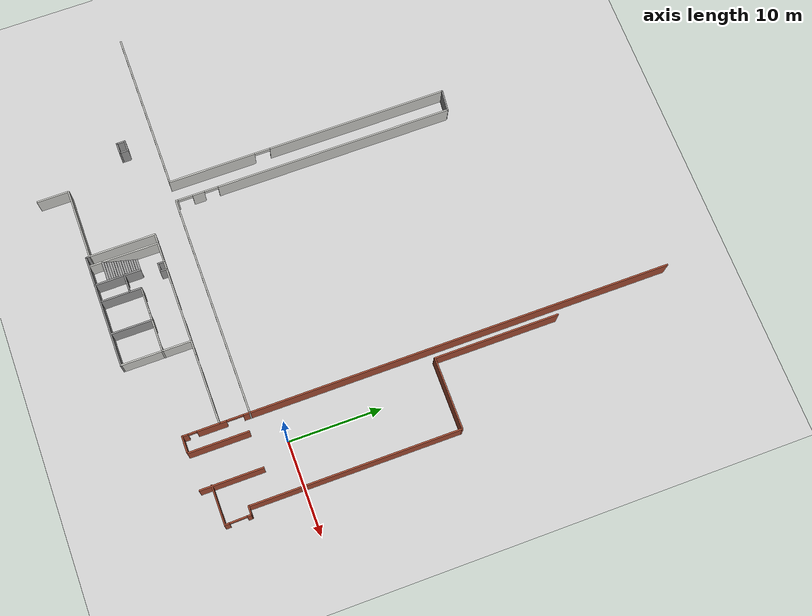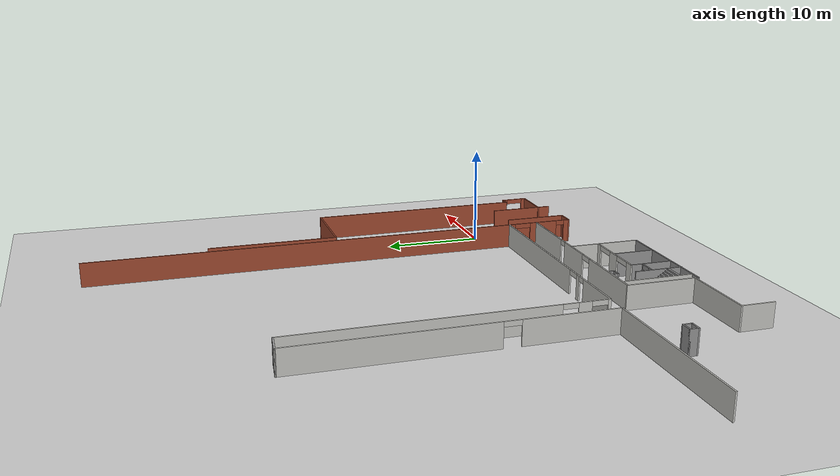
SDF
<sdf version="1.6">
 <world name="default">
  <model name="ground_plane">
   <static>1</static>
   <link name="link">
    <collision name="collision">
     <geometry><plane><normal>0 0 1</normal><size>100 100</size></plane></geometry>
     <surface><friction><ode><mu>100</mu><mu2>50</mu2></ode></friction></surface>
    </collision>
    <visual name="visual">
     <cast_shadows>0</cast_shadows>
     <geometry><plane><normal>0 0 1</normal><size>100 100</size></plane></geometry>
     <material>
      <script><uri>file://media/materials/scripts/gazebo.material</uri><name>Gazebo/Grey</name></script>
     </material>
    </visual>
   </link>
  </model>
  <model name="hospital_LG_detailed">
   <pose>51.8521 -11.413 0 0 -0 0</pose>
   <link name="Wall_0">
    <collision name="Wall_0_Collision">
     <geometry><box><size>6.5 0.15 2.5</size></box></geometry>
     <pose>0 0 1.25 0 -0 0</pose>
    </collision>
    <visual name="Wall_0_Visual">
     <pose>0 0 1.25 0 -0 0</pose>
     <geometry><box><size>6.5 0.15 2.5</size></box></geometry>
     <material>
      <script><uri>file://media/materials/scripts/gazebo.material</uri><name>Gazebo/Bricks</name></script>
      <ambient>1 1 1 1</ambient>
     </material>
     <meta><layer>0</layer></meta>
    </visual>
    <pose>-53.7185 4.89995 0 0 -0 -1.5708</pose>
   </link>
   <link name="Wall_2">
    <collision name="Wall_2_Collision">
     <geometry><box><size>6.75 0.15 2.5</size></box></geometry>
     <pose>0 0 1.25 0 -0 0</pose>
    </collision>
    <visual name="Wall_2_Visual">
     <pose>0 0 1.25 0 -0 0</pose>
     <geometry><box><size>6.75 0.15 2.5</size></box></geometry>
     <material>
      <script><uri>file://media/materials/scripts/gazebo.material</uri><name>Gazebo/Bricks</name></script>
      <ambient>1 1 1 1</ambient>
     </material>
     <meta><layer>0</layer></meta>
    </visual>
    <pose>-49.8098 4.95745 0 0 -0 -1.5708</pose>
   </link>
   <link name="Wall_4">
    <pose>-45.8139 4.28837 0 0 -0 -1.5458</pose>
    <visual name="Wall_4_Visual_0">
     <pose>-1.18145 0 1.25 0 -0 0</pose>
     <geometry><box><size>0.508269 0.15 2.5</size></box></geometry>
     <material>
      <script><uri>file://media/materials/scripts/gazebo.material</uri><name>Gazebo/Bricks</name></script>
      <ambient>1 1 1 1</ambient>
     </material>
     <meta><layer>0</layer></meta>
    </visual>
    <collision name="Wall_4_Collision_0">
     <geometry><box><size>0.508269 0.15 2.5</size></box></geometry>
     <pose>-1.18145 0 1.25 0 -0 0</pose>
    </collision>
    <visual name="Wall_4_Visual_1">
     <pose>1.17092 0 1.25 0 -0 0</pose>
     <geometry><box><size>0.529325 0.15 2.5</size></box></geometry>
     <material>
      <script><uri>file://media/materials/scripts/gazebo.material</uri><name>Gazebo/Bricks</name></script>
      <ambient>1 1 1 1</ambient>
     </material>
     <meta><layer>0</layer></meta>
    </visual>
    <collision name="Wall_4_Collision_1">
     <geometry><box><size>0.529325 0.15 2.5</size></box></geometry>
     <pose>1.17092 0 1.25 0 -0 0</pose>
    </collision>
    <visual name="Wall_4_Visual_2">
     <pose>-0.010528 0 2.25 0 -0 0</pose>
     <geometry><box><size>1.83358 0.15 0.5</size></box></geometry>
     <material>
      <script><uri>file://media/materials/scripts/gazebo.material</uri><name>Gazebo/Bricks</name></script>
      <ambient>1 1 1 1</ambient>
     </material>
     <meta><layer>0</layer></meta>
    </visual>
    <collision name="Wall_4_Collision_2">
     <geometry><box><size>1.83358 0.15 0.5</size></box></geometry>
     <pose>-0.010528 0 2.25 0 -0 0</pose>
    </collision>
   </link>
   <link name="Wall_45">
    <collision name="Wall_45_Collision">
     <geometry><box><size>13.5 0.15 2.5</size></box></geometry>
     <pose>0 0 1.25 0 -0 0</pose>
    </collision>
    <visual name="Wall_45_Visual">
     <pose>0 0 1.25 0 -0 0</pose>
     <geometry><box><size>13.5 0.15 2.5</size></box></geometry>
     <material>
      <script><uri>file://media/materials/scripts/gazebo.material</uri><name>Gazebo/Bricks</name></script>
      <ambient>1 1 1 1</ambient>
     </material>
     <meta><layer>0</layer></meta>
    </visual>
    <pose>-54.4 34.7341 0 0 -0 1.5708</pose>
   </link>
   <link name="Wall_5">
    <collision name="Wall_5_Collision">
     <geometry><box><size>4.25 0.15 2.5</size></box></geometry>
     <pose>0 0 1.25 0 -0 0</pose>
    </collision>
    <visual name="Wall_5_Visual">
     <pose>0 0 1.25 0 -0 0</pose>
     <geometry><box><size>4.25 0.15 2.5</size></box></geometry>
     <material>
      <script><uri>file://media/materials/scripts/gazebo.material</uri><name>Gazebo/Bricks</name></script>
      <ambient>1 1 1 1</ambient>
     </material>
     <meta><layer>0</layer></meta>
    </visual>
    <pose>-47.8374 2.92065 0 0 -0 3.14159</pose>
   </link>
   <link name="Wall_7">
    <collision name="Wall_7_Collision">
     <geometry><box><size>7.82541 0.15 2.5</size></box></geometry>
     <pose>0 0 1.25 0 -0 0</pose>
    </collision>
    <visual name="Wall_7_Visual">
     <pose>0 0 1.25 0 -0 0</pose>
     <geometry><box><size>7.82541 0.15 2.5</size></box></geometry>
     <material>
      <script><uri>file://media/materials/scripts/gazebo.material</uri><name>Gazebo/Bricks</name></script>
      <ambient>1 1 1 1</ambient>
     </material>
     <meta><layer>0</layer></meta>
    </visual>
    <pose>-50.5623 28.0361 0 0 -0 -0.005993</pose>
   </link>
   <link name="Wall_8">
    <collision name="Wall_8_Collision">
     <geometry><box><size>22.5 0.15 2.5</size></box></geometry>
     <pose>0 0 1.25 0 -0 0</pose>
    </collision>
    <visual name="Wall_8_Visual">
     <pose>0 0 1.25 0 -0 0</pose>
     <geometry><box><size>22.5 0.15 2.5</size></box></geometry>
     <material>
      <script><uri>file://media/materials/scripts/gazebo.material</uri><name>Gazebo/Bricks</name></script>
      <ambient>1 1 1 1</ambient>
     </material>
     <meta><layer>0</layer></meta>
    </visual>
    <pose>-46.727 16.8404 0 0 -0 -1.5708</pose>
   </link>
   <link name="Wall_9">
    <collision name="Wall_9_Collision">
     <geometry><box><size>1.02697 0.15 2.5</size></box></geometry>
     <pose>0 0 1.25 0 -0 0</pose>
    </collision>
    <visual name="Wall_9_Visual">
     <pose>0 0 1.25 0 -0 0</pose>
     <geometry><box><size>1.02697 0.15 2.5</size></box></geometry>
     <material>
      <script><uri>file://media/materials/scripts/gazebo.material</uri><name>Gazebo/Bricks</name></script>
      <ambient>1 1 1 1</ambient>
     </material>
     <meta><layer>0</layer></meta>
    </visual>
    <pose>-46.2863 5.65469 0 0 -0 -0.019287</pose>
   </link>
   <static>1</static>
  </model>
  <model name="TKO_LG">
   <pose>-24.5922 13.1807 0 0 -0 0</pose>
   <link name="Stairs_4">
    <visual name="Stairs_4_Visual_0">
     <pose>1.87498 -21.7355 0.083333 0 -0 0</pose>
     <geometry><box><size>2.06304 0.233333 0.166667</size></box></geometry>
     <material>
      <script><uri>file://media/materials/scripts/gazebo.material</uri><name>Gazebo/Grey</name></script>
      <ambient>1 1 1 1</ambient>
     </material>
     <meta><layer>0</layer></meta>
    </visual>
    <collision name="Stairs_4_Collision_0">
     <geometry><box><size>2.06304 0.233333 0.166667</size></box></geometry>
     <pose>1.87498 -21.7355 0.083333 0 -0 0</pose>
    </collision>
    <visual name="Stairs_4_Visual_1">
     <pose>1.87498 -21.9689 0.25 0 -0 0</pose>
     <geometry><box><size>2.06304 0.233333 0.166667</size></box></geometry>
     <material>
      <script><uri>file://media/materials/scripts/gazebo.material</uri><name>Gazebo/Grey</name></script>
      <ambient>1 1 1 1</ambient>
     </material>
     <meta><layer>0</layer></meta>
    </visual>
    <collision name="Stairs_4_Collision_1">
     <geometry><box><size>2.06304 0.233333 0.166667</size></box></geometry>
     <pose>1.87498 -21.9689 0.25 0 -0 0</pose>
    </collision>
    <visual name="Stairs_4_Visual_2">
     <pose>1.87498 -22.2022 0.416667 0 -0 0</pose>
     <geometry><box><size>2.06304 0.233333 0.166667</size></box></geometry>
     <material>
      <script><uri>file://media/materials/scripts/gazebo.material</uri><name>Gazebo/Grey</name></script>
      <ambient>1 1 1 1</ambient>
     </material>
     <meta><layer>0</layer></meta>
    </visual>
    <collision name="Stairs_4_Collision_2">
     <geometry><box><size>2.06304 0.233333 0.166667</size></box></geometry>
     <pose>1.87498 -22.2022 0.416667 0 -0 0</pose>
    </collision>
    <visual name="Stairs_4_Visual_3">
     <pose>1.87498 -22.4355 0.583333 0 -0 0</pose>
     <geometry><box><size>2.06304 0.233333 0.166667</size></box></geometry>
     <material>
      <script><uri>file://media/materials/scripts/gazebo.material</uri><name>Gazebo/Grey</name></script>
      <ambient>1 1 1 1</ambient>
     </material>
     <meta><layer>0</layer></meta>
    </visual>
    <collision name="Stairs_4_Collision_3">
     <geometry><box><size>2.06304 0.233333 0.166667</size></box></geometry>
     <pose>1.87498 -22.4355 0.583333 0 -0 0</pose>
    </collision>
    <visual name="Stairs_4_Visual_4">
     <pose>1.87498 -22.6689 0.75 0 -0 0</pose>
     <geometry><box><size>2.06304 0.233333 0.166667</size></box></geometry>
     <material>
      <script><uri>file://media/materials/scripts/gazebo.material</uri><name>Gazebo/Grey</name></script>
      <ambient>1 1 1 1</ambient>
     </material>
     <meta><layer>0</layer></meta>
    </visual>
    <collision name="Stairs_4_Collision_4">
     <geometry><box><size>2.06304 0.233333 0.166667</size></box></geometry>
     <pose>1.87498 -22.6689 0.75 0 -0 0</pose>
    </collision>
    <visual name="Stairs_4_Visual_5">
     <pose>1.87498 -22.9022 0.916667 0 -0 0</pose>
     <geometry><box><size>2.06304 0.233333 0.166667</size></box></geometry>
     <material>
      <script><uri>file://media/materials/scripts/gazebo.material</uri><name>Gazebo/Grey</name></script>
      <ambient>1 1 1 1</ambient>
     </material>
     <meta><layer>0</layer></meta>
    </visual>
    <collision name="Stairs_4_Collision_5">
     <geometry><box><size>2.06304 0.233333 0.166667</size></box></geometry>
     <pose>1.87498 -22.9022 0.916667 0 -0 0</pose>
    </collision>
    <visual name="Stairs_4_Visual_6">
     <pose>1.87498 -23.1355 1.08333 0 -0 0</pose>
     <geometry><box><size>2.06304 0.233333 0.166667</size></box></geometry>
     <material>
      <script><uri>file://media/materials/scripts/gazebo.material</uri><name>Gazebo/Grey</name></script>
      <ambient>1 1 1 1</ambient>
     </material>
     <meta><layer>0</layer></meta>
    </visual>
    <collision name="Stairs_4_Collision_6">
     <geometry><box><size>2.06304 0.233333 0.166667</size></box></geometry>
     <pose>1.87498 -23.1355 1.08333 0 -0 0</pose>
    </collision>
    <visual name="Stairs_4_Visual_7">
     <pose>1.87498 -23.3689 1.25 0 -0 0</pose>
     <geometry><box><size>2.06304 0.233333 0.166667</size></box></geometry>
     <material>
      <script><uri>file://media/materials/scripts/gazebo.material</uri><name>Gazebo/Grey</name></script>
      <ambient>1 1 1 1</ambient>
     </material>
     <meta><layer>0</layer></meta>
    </visual>
    <collision name="Stairs_4_Collision_7">
     <geometry><box><size>2.06304 0.233333 0.166667</size></box></geometry>
     <pose>1.87498 -23.3689 1.25 0 -0 0</pose>
    </collision>
    <visual name="Stairs_4_Visual_8">
     <pose>1.87498 -23.6022 1.41667 0 -0 0</pose>
     <geometry><box><size>2.06304 0.233333 0.166667</size></box></geometry>
     <material>
      <script><uri>file://media/materials/scripts/gazebo.material</uri><name>Gazebo/Grey</name></script>
      <ambient>1 1 1 1</ambient>
     </material>
     <meta><layer>0</layer></meta>
    </visual>
    <collision name="Stairs_4_Collision_8">
     <geometry><box><size>2.06304 0.233333 0.166667</size></box></geometry>
     <pose>1.87498 -23.6022 1.41667 0 -0 0</pose>
    </collision>
    <visual name="Stairs_4_Visual_9">
     <pose>1.87498 -23.8355 1.58333 0 -0 0</pose>
     <geometry><box><size>2.06304 0.233333 0.166667</size></box></geometry>
     <material>
      <script><uri>file://media/materials/scripts/gazebo.material</uri><name>Gazebo/Grey</name></script>
      <ambient>1 1 1 1</ambient>
     </material>
     <meta><layer>0</layer></meta>
    </visual>
    <collision name="Stairs_4_Collision_9">
     <geometry><box><size>2.06304 0.233333 0.166667</size></box></geometry>
     <pose>1.87498 -23.8355 1.58333 0 -0 0</pose>
    </collision>
    <visual name="Stairs_4_Visual_10">
     <pose>1.87498 -24.0689 1.75 0 -0 0</pose>
     <geometry><box><size>2.06304 0.233333 0.166667</size></box></geometry>
     <material>
      <script><uri>file://media/materials/scripts/gazebo.material</uri><name>Gazebo/Grey</name></script>
      <ambient>1 1 1 1</ambient>
     </material>
     <meta><layer>0</layer></meta>
    </visual>
    <collision name="Stairs_4_Collision_10">
     <geometry><box><size>2.06304 0.233333 0.166667</size></box></geometry>
     <pose>1.87498 -24.0689 1.75 0 -0 0</pose>
    </collision>
    <visual name="Stairs_4_Visual_11">
     <pose>1.87498 -24.3022 1.91667 0 -0 0</pose>
     <geometry><box><size>2.06304 0.233333 0.166667</size></box></geometry>
     <material>
      <script><uri>file://media/materials/scripts/gazebo.material</uri><name>Gazebo/Grey</name></script>
      <ambient>1 1 1 1</ambient>
     </material>
     <meta><layer>0</layer></meta>
    </visual>
    <collision name="Stairs_4_Collision_11">
     <geometry><box><size>2.06304 0.233333 0.166667</size></box></geometry>
     <pose>1.87498 -24.3022 1.91667 0 -0 0</pose>
    </collision>
    <visual name="Stairs_4_Visual_12">
     <pose>1.87498 -24.5355 2.08333 0 -0 0</pose>
     <geometry><box><size>2.06304 0.233333 0.166667</size></box></geometry>
     <material>
      <script><uri>file://media/materials/scripts/gazebo.material</uri><name>Gazebo/Grey</name></script>
      <ambient>1 1 1 1</ambient>
     </material>
     <meta><layer>0</layer></meta>
    </visual>
    <collision name="Stairs_4_Collision_12">
     <geometry><box><size>2.06304 0.233333 0.166667</size></box></geometry>
     <pose>1.87498 -24.5355 2.08333 0 -0 0</pose>
    </collision>
    <visual name="Stairs_4_Visual_13">
     <pose>1.87498 -24.7689 2.25 0 -0 0</pose>
     <geometry><box><size>2.06304 0.233333 0.166667</size></box></geometry>
     <material>
      <script><uri>file://media/materials/scripts/gazebo.material</uri><name>Gazebo/Grey</name></script>
      <ambient>1 1 1 1</ambient>
     </material>
     <meta><layer>0</layer></meta>
    </visual>
    <collision name="Stairs_4_Collision_13">
     <geometry><box><size>2.06304 0.233333 0.166667</size></box></geometry>
     <pose>1.87498 -24.7689 2.25 0 -0 0</pose>
    </collision>
    <visual name="Stairs_4_Visual_14">
     <pose>1.87498 -25.0022 2.41667 0 -0 0</pose>
     <geometry><box><size>2.06304 0.233333 0.166667</size></box></geometry>
     <material>
      <script><uri>file://media/materials/scripts/gazebo.material</uri><name>Gazebo/Grey</name></script>
      <ambient>1 1 1 1</ambient>
     </material>
     <meta><layer>0</layer></meta>
    </visual>
    <collision name="Stairs_4_Collision_14">
     <geometry><box><size>2.06304 0.233333 0.166667</size></box></geometry>
     <pose>1.87498 -25.0022 2.41667 0 -0 0</pose>
    </collision>
   </link>
   <link name="Wall_100">
    <pose>9.04363 -15.8487 0 0 -0 3.14159</pose>
    <visual name="Wall_100_Visual_0">
     <pose>-4.1621 0 1.25 0 -0 0</pose>
     <geometry><box><size>15.6758 0.15 2.5</size></box></geometry>
     <material>
      <script><uri>file://media/materials/scripts/gazebo.material</uri><name>Gazebo/CeilingTiled</name></script>
      <ambient>1 1 1 1</ambient>
     </material>
     <meta><layer>0</layer></meta>
    </visual>
    <collision name="Wall_100_Collision_0">
     <geometry><box><size>15.6758 0.15 2.5</size></box></geometry>
     <pose>-4.1621 0 1.25 0 -0 0</pose>
    </collision>
    <visual name="Wall_100_Visual_1">
     <pose>5.43706 0 1.25 0 -0 0</pose>
     <geometry><box><size>0.548138 0.15 2.5</size></box></geometry>
     <material>
      <script><uri>file://media/materials/scripts/gazebo.material</uri><name>Gazebo/CeilingTiled</name></script>
      <ambient>1 1 1 1</ambient>
     </material>
     <meta><layer>0</layer></meta>
    </visual>
    <collision name="Wall_100_Collision_1">
     <geometry><box><size>0.548138 0.15 2.5</size></box></geometry>
     <pose>5.43706 0 1.25 0 -0 0</pose>
    </collision>
    <visual name="Wall_100_Visual_2">
     <pose>9.30556 0 1.25 0 -0 0</pose>
     <geometry><box><size>5.38887 0.15 2.5</size></box></geometry>
     <material>
      <script><uri>file://media/materials/scripts/gazebo.material</uri><name>Gazebo/CeilingTiled</name></script>
      <ambient>1 1 1 1</ambient>
     </material>
     <meta><layer>0</layer></meta>
    </visual>
    <collision name="Wall_100_Collision_2">
     <geometry><box><size>5.38887 0.15 2.5</size></box></geometry>
     <pose>9.30556 0 1.25 0 -0 0</pose>
    </collision>
    <visual name="Wall_100_Visual_3">
     <pose>4.4194 0 2.25 0 -0 0</pose>
     <geometry><box><size>1.48719 0.15 0.5</size></box></geometry>
     <material>
      <script><uri>file://media/materials/scripts/gazebo.material</uri><name>Gazebo/CeilingTiled</name></script>
      <ambient>1 1 1 1</ambient>
     </material>
     <meta><layer>0</layer></meta>
    </visual>
    <collision name="Wall_100_Collision_3">
     <geometry><box><size>1.48719 0.15 0.5</size></box></geometry>
     <pose>4.4194 0 2.25 0 -0 0</pose>
    </collision>
    <visual name="Wall_100_Visual_4">
     <pose>6.16113 0 2.25 0 -0 0</pose>
     <geometry><box><size>0.9 0.15 0.5</size></box></geometry>
     <material>
      <script><uri>file://media/materials/scripts/gazebo.material</uri><name>Gazebo/CeilingTiled</name></script>
      <ambient>1 1 1 1</ambient>
     </material>
     <meta><layer>0</layer></meta>
    </visual>
    <collision name="Wall_100_Collision_4">
     <geometry><box><size>0.9 0.15 0.5</size></box></geometry>
     <pose>6.16113 0 2.25 0 -0 0</pose>
    </collision>
   </link>
   <link name="Wall_102">
    <pose>10.3628 -19.0309 0 0 -0 3.14159</pose>
    <visual name="Wall_102_Visual_0">
     <pose>-7.31057 0 1.25 0 -0 0</pose>
     <geometry><box><size>6.62887 0.15 2.5</size></box></geometry>
     <material>
      <script><uri>file://media/materials/scripts/gazebo.material</uri><name>Gazebo/CeilingTiled</name></script>
      <ambient>1 1 1 1</ambient>
     </material>
     <meta><layer>0</layer></meta>
    </visual>
    <collision name="Wall_102_Collision_0">
     <geometry><box><size>6.62887 0.15 2.5</size></box></geometry>
     <pose>-7.31057 0 1.25 0 -0 0</pose>
    </collision>
    <visual name="Wall_102_Visual_1">
     <pose>-0.993344 0 1.25 0 -0 0</pose>
     <geometry><box><size>4.20558 0.15 2.5</size></box></geometry>
     <material>
      <script><uri>file://media/materials/scripts/gazebo.material</uri><name>Gazebo/CeilingTiled</name></script>
      <ambient>1 1 1 1</ambient>
     </material>
     <meta><layer>0</layer></meta>
    </visual>
    <collision name="Wall_102_Collision_1">
     <geometry><box><size>4.20558 0.15 2.5</size></box></geometry>
     <pose>-0.993344 0 1.25 0 -0 0</pose>
    </collision>
    <visual name="Wall_102_Visual_2">
     <pose>6.62748 0 1.25 0 -0 0</pose>
     <geometry><box><size>7.99504 0.15 2.5</size></box></geometry>
     <material>
      <script><uri>file://media/materials/scripts/gazebo.material</uri><name>Gazebo/CeilingTiled</name></script>
      <ambient>1 1 1 1</ambient>
     </material>
     <meta><layer>0</layer></meta>
    </visual>
    <collision name="Wall_102_Collision_2">
     <geometry><box><size>7.99504 0.15 2.5</size></box></geometry>
     <pose>6.62748 0 1.25 0 -0 0</pose>
    </collision>
    <visual name="Wall_102_Visual_3">
     <pose>-3.54613 0 2.25 0 -0 0</pose>
     <geometry><box><size>0.9 0.15 0.5</size></box></geometry>
     <material>
      <script><uri>file://media/materials/scripts/gazebo.material</uri><name>Gazebo/CeilingTiled</name></script>
      <ambient>1 1 1 1</ambient>
     </material>
     <meta><layer>0</layer></meta>
    </visual>
    <collision name="Wall_102_Collision_3">
     <geometry><box><size>0.9 0.15 0.5</size></box></geometry>
     <pose>-3.54613 0 2.25 0 -0 0</pose>
    </collision>
    <visual name="Wall_102_Visual_4">
     <pose>1.8697 0 2.25 0 -0 0</pose>
     <geometry><box><size>1.52052 0.15 0.5</size></box></geometry>
     <material>
      <script><uri>file://media/materials/scripts/gazebo.material</uri><name>Gazebo/CeilingTiled</name></script>
      <ambient>1 1 1 1</ambient>
     </material>
     <meta><layer>0</layer></meta>
    </visual>
    <collision name="Wall_102_Collision_4">
     <geometry><box><size>1.52052 0.15 0.5</size></box></geometry>
     <pose>1.8697 0 2.25 0 -0 0</pose>
    </collision>
   </link>
   <link name="Wall_103">
    <collision name="Wall_103_Collision">
     <geometry><box><size>7.22209 0.15 2.5</size></box></geometry>
     <pose>0 0 1.25 0 -0 0</pose>
    </collision>
    <visual name="Wall_103_Visual">
     <pose>0 0 1.25 0 -0 0</pose>
     <geometry><box><size>7.22209 0.15 2.5</size></box></geometry>
     <material>
      <script><uri>file://media/materials/scripts/gazebo.material</uri><name>Gazebo/CeilingTiled</name></script>
      <ambient>1 1 1 1</ambient>
     </material>
     <meta><layer>0</layer></meta>
    </visual>
    <pose>-0.201158 -22.553 0 0 -0 -1.5708</pose>
   </link>
   <link name="Wall_104">
    <collision name="Wall_104_Collision">
     <geometry><box><size>7.75 0.15 2.5</size></box></geometry>
     <pose>0 0 1.25 0 -0 0</pose>
    </collision>
    <visual name="Wall_104_Visual">
     <pose>0 0 1.25 0 -0 0</pose>
     <geometry><box><size>7.75 0.15 2.5</size></box></geometry>
     <material>
      <script><uri>file://media/materials/scripts/gazebo.material</uri><name>Gazebo/CeilingTiled</name></script>
      <ambient>1 1 1 1</ambient>
     </material>
     <meta><layer>0</layer></meta>
    </visual>
    <pose>-4.00116 -26.089 0 0 -0 3.14159</pose>
   </link>
   <link name="Wall_105">
    <collision name="Wall_105_Collision">
     <geometry><box><size>3.5 0.15 2.5</size></box></geometry>
     <pose>0 0 1.25 0 -0 0</pose>
    </collision>
    <visual name="Wall_105_Visual">
     <pose>0 0 1.25 0 -0 0</pose>
     <geometry><box><size>3.5 0.15 2.5</size></box></geometry>
     <material>
      <script><uri>file://media/materials/scripts/gazebo.material</uri><name>Gazebo/CeilingTiled</name></script>
      <ambient>1 1 1 1</ambient>
     </material>
     <meta><layer>0</layer></meta>
    </visual>
    <pose>-7.80116 -27.764 0 0 -0 -1.5708</pose>
   </link>
   <link name="Wall_107">
    <collision name="Wall_107_Collision">
     <geometry><box><size>17.5 0.15 2.5</size></box></geometry>
     <pose>0 0 1.25 0 -0 0</pose>
    </collision>
    <visual name="Wall_107_Visual">
     <pose>0 0 1.25 0 -0 0</pose>
     <geometry><box><size>17.5 0.15 2.5</size></box></geometry>
     <material>
      <script><uri>file://media/materials/scripts/gazebo.material</uri><name>Gazebo/CeilingTiled</name></script>
      <ambient>1 1 1 1</ambient>
     </material>
     <meta><layer>0</layer></meta>
    </visual>
    <pose>-13.8888 -15.8207 0 0 -0 0</pose>
   </link>
   <link name="Wall_109">
    <pose>-5.2138 -0.520748 0 0 -0 1.5708</pose>
    <visual name="Wall_109_Visual_0">
     <pose>-10.6375 0 1.25 0 -0 0</pose>
     <geometry><box><size>9.47493 0.15 2.5</size></box></geometry>
     <material>
      <script><uri>file://media/materials/scripts/gazebo.material</uri><name>Gazebo/CeilingTiled</name></script>
      <ambient>1 1 1 1</ambient>
     </material>
     <meta><layer>0</layer></meta>
    </visual>
    <collision name="Wall_109_Collision_0">
     <geometry><box><size>9.47493 0.15 2.5</size></box></geometry>
     <pose>-10.6375 0 1.25 0 -0 0</pose>
    </collision>
    <visual name="Wall_109_Visual_1">
     <pose>5.58217 0 1.25 0 -0 0</pose>
     <geometry><box><size>19.5857 0.15 2.5</size></box></geometry>
     <material>
      <script><uri>file://media/materials/scripts/gazebo.material</uri><name>Gazebo/CeilingTiled</name></script>
      <ambient>1 1 1 1</ambient>
     </material>
     <meta><layer>0</layer></meta>
    </visual>
    <collision name="Wall_109_Collision_1">
     <geometry><box><size>19.5857 0.15 2.5</size></box></geometry>
     <pose>5.58217 0 1.25 0 -0 0</pose>
    </collision>
    <visual name="Wall_109_Visual_2">
     <pose>-5.05537 0 2.25 0 -0 0</pose>
     <geometry><box><size>1.68941 0.15 0.5</size></box></geometry>
     <material>
      <script><uri>file://media/materials/scripts/gazebo.material</uri><name>Gazebo/CeilingTiled</name></script>
      <ambient>1 1 1 1</ambient>
     </material>
     <meta><layer>0</layer></meta>
    </visual>
    <collision name="Wall_109_Collision_2">
     <geometry><box><size>1.68941 0.15 0.5</size></box></geometry>
     <pose>-5.05537 0 2.25 0 -0 0</pose>
    </collision>
   </link>
   <link name="Wall_110">
    <collision name="Wall_110_Collision">
     <geometry><box><size>2.398 0.15 2.5</size></box></geometry>
     <pose>0 0 1.25 0 -0 0</pose>
    </collision>
    <visual name="Wall_110_Visual">
     <pose>0 0 1.25 0 -0 0</pose>
     <geometry><box><size>2.398 0.15 2.5</size></box></geometry>
     <material>
      <script><uri>file://media/materials/scripts/gazebo.material</uri><name>Gazebo/Grey</name></script>
      <ambient>1 1 1 1</ambient>
     </material>
     <meta><layer>0</layer></meta>
    </visual>
    <pose>-4.09705 14.6518 0 0 -0 -0.113621</pose>
   </link>
   <link name="Wall_111">
    <pose>-2.97625 -0.650618 0 0 -0 -1.5708</pose>
    <visual name="Wall_111_Visual_0">
     <pose>-2.34069 0 1.25 0 -0 0</pose>
     <geometry><box><size>25.8186 0.15 2.5</size></box></geometry>
     <material>
      <script><uri>file://media/materials/scripts/gazebo.material</uri><name>Gazebo/CeilingTiled</name></script>
      <ambient>1 1 1 1</ambient>
     </material>
     <meta><layer>0</layer></meta>
    </visual>
    <collision name="Wall_111_Collision_0">
     <geometry><box><size>25.8186 0.15 2.5</size></box></geometry>
     <pose>-2.34069 0 1.25 0 -0 0</pose>
    </collision>
    <visual name="Wall_111_Visual_1">
     <pose>12.7395 0 1.25 0 -0 0</pose>
     <geometry><box><size>1.2931 0.15 2.5</size></box></geometry>
     <material>
      <script><uri>file://media/materials/scripts/gazebo.material</uri><name>Gazebo/CeilingTiled</name></script>
      <ambient>1 1 1 1</ambient>
     </material>
     <meta><layer>0</layer></meta>
    </visual>
    <collision name="Wall_111_Collision_1">
     <geometry><box><size>1.2931 0.15 2.5</size></box></geometry>
     <pose>12.7395 0 1.25 0 -0 0</pose>
    </collision>
    <visual name="Wall_111_Visual_2">
     <pose>15.1013 0 1.25 0 -0 0</pose>
     <geometry><box><size>0.297387 0.15 2.5</size></box></geometry>
     <material>
      <script><uri>file://media/materials/scripts/gazebo.material</uri><name>Gazebo/CeilingTiled</name></script>
      <ambient>1 1 1 1</ambient>
     </material>
     <meta><layer>0</layer></meta>
    </visual>
    <collision name="Wall_111_Collision_2">
     <geometry><box><size>0.297387 0.15 2.5</size></box></geometry>
     <pose>15.1013 0 1.25 0 -0 0</pose>
    </collision>
    <visual name="Wall_111_Visual_3">
     <pose>11.3308 0 2.25 0 -0 0</pose>
     <geometry><box><size>1.52435 0.15 0.5</size></box></geometry>
     <material>
      <script><uri>file://media/materials/scripts/gazebo.material</uri><name>Gazebo/CeilingTiled</name></script>
      <ambient>1 1 1 1</ambient>
     </material>
     <meta><layer>0</layer></meta>
    </visual>
    <collision name="Wall_111_Collision_3">
     <geometry><box><size>1.52435 0.15 0.5</size></box></geometry>
     <pose>11.3308 0 2.25 0 -0 0</pose>
    </collision>
    <visual name="Wall_111_Visual_4">
     <pose>14.1693 0 2.25 0 -0 0</pose>
     <geometry><box><size>1.56654 0.15 0.5</size></box></geometry>
     <material>
      <script><uri>file://media/materials/scripts/gazebo.material</uri><name>Gazebo/CeilingTiled</name></script>
      <ambient>1 1 1 1</ambient>
     </material>
     <meta><layer>0</layer></meta>
    </visual>
    <collision name="Wall_111_Collision_4">
     <geometry><box><size>1.56654 0.15 0.5</size></box></geometry>
     <pose>14.1693 0 2.25 0 -0 0</pose>
    </collision>
   </link>
   <link name="Wall_113">
    <collision name="Wall_113_Collision">
     <geometry><box><size>0.75 0.15 2.5</size></box></geometry>
     <pose>0 0 1.25 0 -0 0</pose>
    </collision>
    <visual name="Wall_113_Visual">
     <pose>0 0 1.25 0 -0 0</pose>
     <geometry><box><size>0.75 0.15 2.5</size></box></geometry>
     <material>
      <script><uri>file://media/materials/scripts/gazebo.material</uri><name>Gazebo/Grey</name></script>
      <ambient>1 1 1 1</ambient>
     </material>
     <meta><layer>0</layer></meta>
    </visual>
    <pose>3.81641 -19.38 0 0 -0 -1.5708</pose>
   </link>
   <link name="Wall_114">
    <collision name="Wall_114_Collision">
     <geometry><box><size>1 0.15 2.5</size></box></geometry>
     <pose>0 0 1.25 0 -0 0</pose>
    </collision>
    <visual name="Wall_114_Visual">
     <pose>0 0 1.25 0 -0 0</pose>
     <geometry><box><size>1 0.15 2.5</size></box></geometry>
     <material>
      <script><uri>file://media/materials/scripts/gazebo.material</uri><name>Gazebo/Grey</name></script>
      <ambient>1 1 1 1</ambient>
     </material>
     <meta><layer>0</layer></meta>
    </visual>
    <pose>3.3914 -19.68 0 0 -0 3.14159</pose>
   </link>
   <link name="Wall_115">
    <collision name="Wall_115_Collision">
     <geometry><box><size>0.75 0.15 2.5</size></box></geometry>
     <pose>0 0 1.25 0 -0 0</pose>
    </collision>
    <visual name="Wall_115_Visual">
     <pose>0 0 1.25 0 -0 0</pose>
     <geometry><box><size>0.75 0.15 2.5</size></box></geometry>
     <material>
      <script><uri>file://media/materials/scripts/gazebo.material</uri><name>Gazebo/Grey</name></script>
      <ambient>1 1 1 1</ambient>
     </material>
     <meta><layer>0</layer></meta>
    </visual>
    <pose>2.9664 -19.38 0 0 -0 1.5708</pose>
   </link>
   <link name="Wall_117">
    <collision name="Wall_117_Collision">
     <geometry><box><size>7.5 0.15 2.5</size></box></geometry>
     <pose>0 0 1.25 0 -0 0</pose>
    </collision>
    <visual name="Wall_117_Visual">
     <pose>0 0 1.25 0 -0 0</pose>
     <geometry><box><size>7.5 0.15 2.5</size></box></geometry>
     <material>
      <script><uri>file://media/materials/scripts/gazebo.material</uri><name>Gazebo/CeilingTiled</name></script>
      <ambient>1 1 1 1</ambient>
     </material>
     <meta><layer>0</layer></meta>
    </visual>
    <pose>11.9561 -22.7733 0 0 -0 -1.5708</pose>
   </link>
   <link name="Wall_118">
    <collision name="Wall_118_Collision">
     <geometry><box><size>12.25 0.15 2.5</size></box></geometry>
     <pose>0 0 1.25 0 -0 0</pose>
    </collision>
    <visual name="Wall_118_Visual">
     <pose>0 0 1.25 0 -0 0</pose>
     <geometry><box><size>12.25 0.15 2.5</size></box></geometry>
     <material>
      <script><uri>file://media/materials/scripts/gazebo.material</uri><name>Gazebo/Grey</name></script>
      <ambient>1 1 1 1</ambient>
     </material>
     <meta><layer>0</layer></meta>
    </visual>
    <pose>5.90613 -26.4483 0 0 -0 3.14159</pose>
   </link>
   <link name="Wall_119">
    <collision name="Wall_119_Collision">
     <geometry><box><size>0.513763 0.15 2.5</size></box></geometry>
     <pose>0 0 1.25 0 -0 0</pose>
    </collision>
    <visual name="Wall_119_Visual">
     <pose>0 0 1.25 0 -0 0</pose>
     <geometry><box><size>0.513763 0.15 2.5</size></box></geometry>
     <material>
      <script><uri>file://media/materials/scripts/gazebo.material</uri><name>Gazebo/Grey</name></script>
      <ambient>1 1 1 1</ambient>
     </material>
     <meta><layer>0</layer></meta>
    </visual>
    <pose>-0.172515 -26.2686 0 0 -0 1.72894</pose>
   </link>
   <link name="Wall_121">
    <collision name="Wall_121_Collision">
     <geometry><box><size>7.5 0.15 2.5</size></box></geometry>
     <pose>0 0 1.25 0 -0 0</pose>
    </collision>
    <visual name="Wall_121_Visual">
     <pose>0 0 1.25 0 -0 0</pose>
     <geometry><box><size>7.5 0.15 2.5</size></box></geometry>
     <material>
      <script><uri>file://media/materials/scripts/gazebo.material</uri><name>Gazebo/CeilingTiled</name></script>
      <ambient>1 1 1 1</ambient>
     </material>
     <meta><layer>0</layer></meta>
    </visual>
    <pose>0.841574 -22.7185 0 0 -0 -1.5708</pose>
   </link>
   <link name="Wall_123">
    <collision name="Wall_123_Collision">
     <geometry><box><size>5 0.15 2.5</size></box></geometry>
     <pose>0 0 1.25 0 -0 0</pose>
    </collision>
    <visual name="Wall_123_Visual">
     <pose>0 0 1.25 0 -0 0</pose>
     <geometry><box><size>5 0.15 2.5</size></box></geometry>
     <material>
      <script><uri>file://media/materials/scripts/gazebo.material</uri><name>Gazebo/Grey</name></script>
      <ambient>1 1 1 1</ambient>
     </material>
     <meta><layer>0</layer></meta>
    </visual>
    <pose>2.97688 -24.0509 0 0 -0 -1.5708</pose>
   </link>
   <link name="Wall_126">
    <pose>8.42438 -22.0913 0 0 -0 3.14159</pose>
    <visual name="Wall_126_Visual_0">
     <pose>-3.24445 0 1.25 0 -0 0</pose>
     <geometry><box><size>0.761094 0.15 2.5</size></box></geometry>
     <material>
      <script><uri>file://media/materials/scripts/gazebo.material</uri><name>Gazebo/CeilingTiled</name></script>
      <ambient>1 1 1 1</ambient>
     </material>
     <meta><layer>0</layer></meta>
    </visual>
    <collision name="Wall_126_Collision_0">
     <geometry><box><size>0.761094 0.15 2.5</size></box></geometry>
     <pose>-3.24445 0 1.25 0 -0 0</pose>
    </collision>
    <visual name="Wall_126_Visual_1">
     <pose>-0.075561 0 1.25 0 -0 0</pose>
     <geometry><box><size>1.49538 0.15 2.5</size></box></geometry>
     <material>
      <script><uri>file://media/materials/scripts/gazebo.material</uri><name>Gazebo/CeilingTiled</name></script>
      <ambient>1 1 1 1</ambient>
     </material>
     <meta><layer>0</layer></meta>
    </visual>
    <collision name="Wall_126_Collision_1">
     <geometry><box><size>1.49538 0.15 2.5</size></box></geometry>
     <pose>-0.075561 0 1.25 0 -0 0</pose>
    </collision>
    <visual name="Wall_126_Visual_2">
     <pose>3.17346 0 1.25 0 -0 0</pose>
     <geometry><box><size>0.903091 0.15 2.5</size></box></geometry>
     <material>
      <script><uri>file://media/materials/scripts/gazebo.material</uri><name>Gazebo/CeilingTiled</name></script>
      <ambient>1 1 1 1</ambient>
     </material>
     <meta><layer>0</layer></meta>
    </visual>
    <collision name="Wall_126_Collision_2">
     <geometry><box><size>0.903091 0.15 2.5</size></box></geometry>
     <pose>3.17346 0 1.25 0 -0 0</pose>
    </collision>
    <visual name="Wall_126_Visual_3">
     <pose>-1.84358 0 2.25 0 -0 0</pose>
     <geometry><box><size>2.04066 0.15 0.5</size></box></geometry>
     <material>
      <script><uri>file://media/materials/scripts/gazebo.material</uri><name>Gazebo/CeilingTiled</name></script>
      <ambient>1 1 1 1</ambient>
     </material>
     <meta><layer>0</layer></meta>
    </visual>
    <collision name="Wall_126_Collision_3">
     <geometry><box><size>2.04066 0.15 0.5</size></box></geometry>
     <pose>-1.84358 0 2.25 0 -0 0</pose>
    </collision>
    <visual name="Wall_126_Visual_4">
     <pose>1.69702 0 2.25 0 -0 0</pose>
     <geometry><box><size>2.04978 0.15 0.5</size></box></geometry>
     <material>
      <script><uri>file://media/materials/scripts/gazebo.material</uri><name>Gazebo/CeilingTiled</name></script>
      <ambient>1 1 1 1</ambient>
     </material>
     <meta><layer>0</layer></meta>
    </visual>
    <collision name="Wall_126_Collision_4">
     <geometry><box><size>2.04978 0.15 0.5</size></box></geometry>
     <pose>1.69702 0 2.25 0 -0 0</pose>
    </collision>
   </link>
   <link name="Wall_128">
    <collision name="Wall_128_Collision">
     <geometry><box><size>4.5 0.15 2.5</size></box></geometry>
     <pose>0 0 1.25 0 -0 0</pose>
    </collision>
    <visual name="Wall_128_Visual">
     <pose>0 0 1.25 0 -0 0</pose>
     <geometry><box><size>4.5 0.15 2.5</size></box></geometry>
     <material>
      <script><uri>file://media/materials/scripts/gazebo.material</uri><name>Gazebo/Grey</name></script>
      <ambient>1 1 1 1</ambient>
     </material>
     <meta><layer>0</layer></meta>
    </visual>
    <pose>4.87438 -24.2663 0 0 -0 -1.5708</pose>
   </link>
   <link name="Wall_130">
    <pose>3.94081 -23.3141 0 0 -0 3.14159</pose>
    <visual name="Wall_130_Visual_0">
     <pose>-0.847584 0 1.25 0 -0 0</pose>
     <geometry><box><size>0.304831 0.15 2.5</size></box></geometry>
     <material>
      <script><uri>file://media/materials/scripts/gazebo.material</uri><name>Gazebo/Grey</name></script>
      <ambient>1 1 1 1</ambient>
     </material>
     <meta><layer>0</layer></meta>
    </visual>
    <collision name="Wall_130_Collision_0">
     <geometry><box><size>0.304831 0.15 2.5</size></box></geometry>
     <pose>-0.847584 0 1.25 0 -0 0</pose>
    </collision>
    <visual name="Wall_130_Visual_1">
     <pose>0.675418 0 1.25 0 -0 0</pose>
     <geometry><box><size>0.649165 0.15 2.5</size></box></geometry>
     <material>
      <script><uri>file://media/materials/scripts/gazebo.material</uri><name>Gazebo/Grey</name></script>
      <ambient>1 1 1 1</ambient>
     </material>
     <meta><layer>0</layer></meta>
    </visual>
    <collision name="Wall_130_Collision_1">
     <geometry><box><size>0.649165 0.15 2.5</size></box></geometry>
     <pose>0.675418 0 1.25 0 -0 0</pose>
    </collision>
    <visual name="Wall_130_Visual_2">
     <pose>-0.172167 0 2.25 0 -0 0</pose>
     <geometry><box><size>1.046 0.15 0.5</size></box></geometry>
     <material>
      <script><uri>file://media/materials/scripts/gazebo.material</uri><name>Gazebo/Grey</name></script>
      <ambient>1 1 1 1</ambient>
     </material>
     <meta><layer>0</layer></meta>
    </visual>
    <collision name="Wall_130_Collision_2">
     <geometry><box><size>1.046 0.15 0.5</size></box></geometry>
     <pose>-0.172167 0 2.25 0 -0 0</pose>
    </collision>
   </link>
   <link name="Wall_132">
    <collision name="Wall_132_Collision">
     <geometry><box><size>4.5 0.15 2.5</size></box></geometry>
     <pose>0 0 1.25 0 -0 0</pose>
    </collision>
    <visual name="Wall_132_Visual">
     <pose>0 0 1.25 0 -0 0</pose>
     <geometry><box><size>4.5 0.15 2.5</size></box></geometry>
     <material>
      <script><uri>file://media/materials/scripts/gazebo.material</uri><name>Gazebo/Grey</name></script>
      <ambient>1 1 1 1</ambient>
     </material>
     <meta><layer>0</layer></meta>
    </visual>
    <pose>8.49766 -24.2846 0 0 -0 -1.5708</pose>
   </link>
   <link name="Wall_134">
    <collision name="Wall_134_Collision">
     <geometry><box><size>1.25 0.15 2.5</size></box></geometry>
     <pose>0 0 1.25 0 -0 0</pose>
    </collision>
    <visual name="Wall_134_Visual">
     <pose>0 0 1.25 0 -0 0</pose>
     <geometry><box><size>1.25 0.15 2.5</size></box></geometry>
     <material>
      <script><uri>file://media/materials/scripts/gazebo.material</uri><name>Gazebo/Grey</name></script>
      <ambient>1 1 1 1</ambient>
     </material>
     <meta><layer>0</layer></meta>
    </visual>
    <pose>-10.7006 -18.8851 0 0 -0 0</pose>
   </link>
   <link name="Wall_135">
    <collision name="Wall_135_Collision">
     <geometry><box><size>1 0.15 2.5</size></box></geometry>
     <pose>0 0 1.25 0 -0 0</pose>
    </collision>
    <visual name="Wall_135_Visual">
     <pose>0 0 1.25 0 -0 0</pose>
     <geometry><box><size>1 0.15 2.5</size></box></geometry>
     <material>
      <script><uri>file://media/materials/scripts/gazebo.material</uri><name>Gazebo/Grey</name></script>
      <ambient>1 1 1 1</ambient>
     </material>
     <meta><layer>0</layer></meta>
    </visual>
    <pose>-10.1506 -19.3101 0 0 -0 -1.5708</pose>
   </link>
   <link name="Wall_136">
    <collision name="Wall_136_Collision">
     <geometry><box><size>1.25 0.15 2.5</size></box></geometry>
     <pose>0 0 1.25 0 -0 0</pose>
    </collision>
    <visual name="Wall_136_Visual">
     <pose>0 0 1.25 0 -0 0</pose>
     <geometry><box><size>1.25 0.15 2.5</size></box></geometry>
     <material>
      <script><uri>file://media/materials/scripts/gazebo.material</uri><name>Gazebo/Grey</name></script>
      <ambient>1 1 1 1</ambient>
     </material>
     <meta><layer>0</layer></meta>
    </visual>
    <pose>-10.7006 -19.7351 0 0 -0 3.14159</pose>
   </link>
   <link name="Wall_137">
    <collision name="Wall_137_Collision">
     <geometry><box><size>1 0.15 2.5</size></box></geometry>
     <pose>0 0 1.25 0 -0 0</pose>
    </collision>
    <visual name="Wall_137_Visual">
     <pose>0 0 1.25 0 -0 0</pose>
     <geometry><box><size>1 0.15 2.5</size></box></geometry>
     <material>
      <script><uri>file://media/materials/scripts/gazebo.material</uri><name>Gazebo/Grey</name></script>
      <ambient>1 1 1 1</ambient>
     </material>
     <meta><layer>0</layer></meta>
    </visual>
    <pose>-11.2506 -19.3101 0 0 -0 1.5708</pose>
   </link>
   <link name="Wall_96">
    <collision name="Wall_96_Collision">
     <geometry><box><size>1.75 0.15 2.5</size></box></geometry>
     <pose>0 0 1.25 0 -0 0</pose>
    </collision>
    <visual name="Wall_96_Visual">
     <pose>0 0 1.25 0 -0 0</pose>
     <geometry><box><size>1.75 0.15 2.5</size></box></geometry>
     <material>
      <script><uri>file://media/materials/scripts/gazebo.material</uri><name>Gazebo/Bricks</name></script>
      <ambient>1 1 1 1</ambient>
     </material>
     <meta><layer>0</layer></meta>
    </visual>
    <pose>21.7638 -22.911 0 0 -0 3.14159</pose>
   </link>
   <link name="Wall_98">
    <pose>20.9638 3.26402 0 0 -0 1.5708</pose>
    <visual name="Wall_98_Visual_0">
     <pose>-25.8992 0 1.25 0 -0 0</pose>
     <geometry><box><size>0.701529 0.15 2.5</size></box></geometry>
     <material>
      <script><uri>file://media/materials/scripts/gazebo.material</uri><name>Gazebo/Bricks</name></script>
      <ambient>1 1 1 1</ambient>
     </material>
     <meta><layer>0</layer></meta>
    </visual>
    <collision name="Wall_98_Collision_0">
     <geometry><box><size>0.701529 0.15 2.5</size></box></geometry>
     <pose>-25.8992 0 1.25 0 -0 0</pose>
    </collision>
    <visual name="Wall_98_Visual_1">
     <pose>-23.0949 0 1.25 0 -0 0</pose>
     <geometry><box><size>3.1072 0.15 2.5</size></box></geometry>
     <material>
      <script><uri>file://media/materials/scripts/gazebo.material</uri><name>Gazebo/Bricks</name></script>
      <ambient>1 1 1 1</ambient>
     </material>
     <meta><layer>0</layer></meta>
    </visual>
    <collision name="Wall_98_Collision_1">
     <geometry><box><size>3.1072 0.15 2.5</size></box></geometry>
     <pose>-23.0949 0 1.25 0 -0 0</pose>
    </collision>
    <visual name="Wall_98_Visual_2">
     <pose>3.22798 0 1.25 0 -0 0</pose>
     <geometry><box><size>46.044 0.15 2.5</size></box></geometry>
     <material>
      <script><uri>file://media/materials/scripts/gazebo.material</uri><name>Gazebo/Bricks</name></script>
      <ambient>1 1 1 1</ambient>
     </material>
     <meta><layer>0</layer></meta>
    </visual>
    <collision name="Wall_98_Collision_2">
     <geometry><box><size>46.044 0.15 2.5</size></box></geometry>
     <pose>3.22798 0 1.25 0 -0 0</pose>
    </collision>
    <visual name="Wall_98_Visual_3">
     <pose>-25.0985 0 2.25 0 -0 0</pose>
     <geometry><box><size>0.9 0.15 0.5</size></box></geometry>
     <material>
      <script><uri>file://media/materials/scripts/gazebo.material</uri><name>Gazebo/Bricks</name></script>
      <ambient>1 1 1 1</ambient>
     </material>
     <meta><layer>0</layer></meta>
    </visual>
    <collision name="Wall_98_Collision_3">
     <geometry><box><size>0.9 0.15 0.5</size></box></geometry>
     <pose>-25.0985 0 2.25 0 -0 0</pose>
    </collision>
    <visual name="Wall_98_Visual_4">
     <pose>-20.6677 0 2.25 0 -0 0</pose>
     <geometry><box><size>1.74724 0.15 0.5</size></box></geometry>
     <material>
      <script><uri>file://media/materials/scripts/gazebo.material</uri><name>Gazebo/Bricks</name></script>
      <ambient>1 1 1 1</ambient>
     </material>
     <meta><layer>0</layer></meta>
    </visual>
    <collision name="Wall_98_Collision_4">
     <geometry><box><size>1.74724 0.15 0.5</size></box></geometry>
     <pose>-20.6677 0 2.25 0 -0 0</pose>
    </collision>
   </link>
   <static>1</static>
  </model>
 </world>
</sdf>
